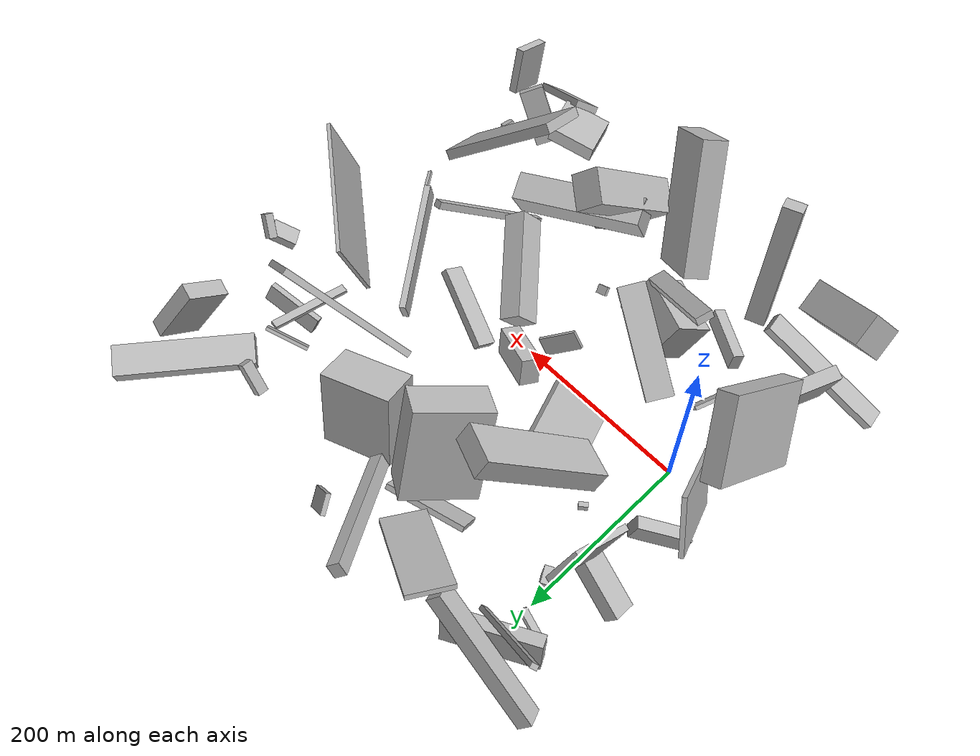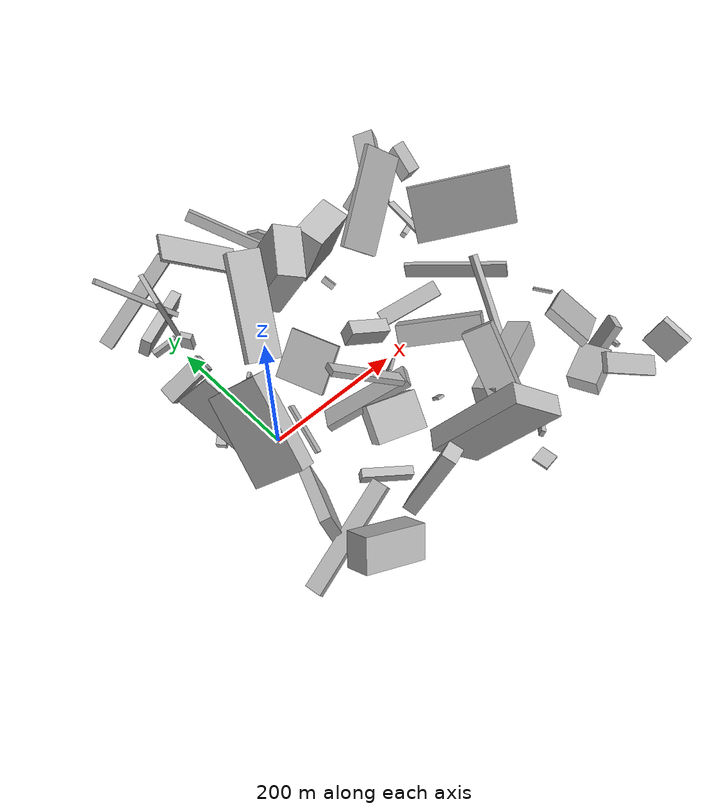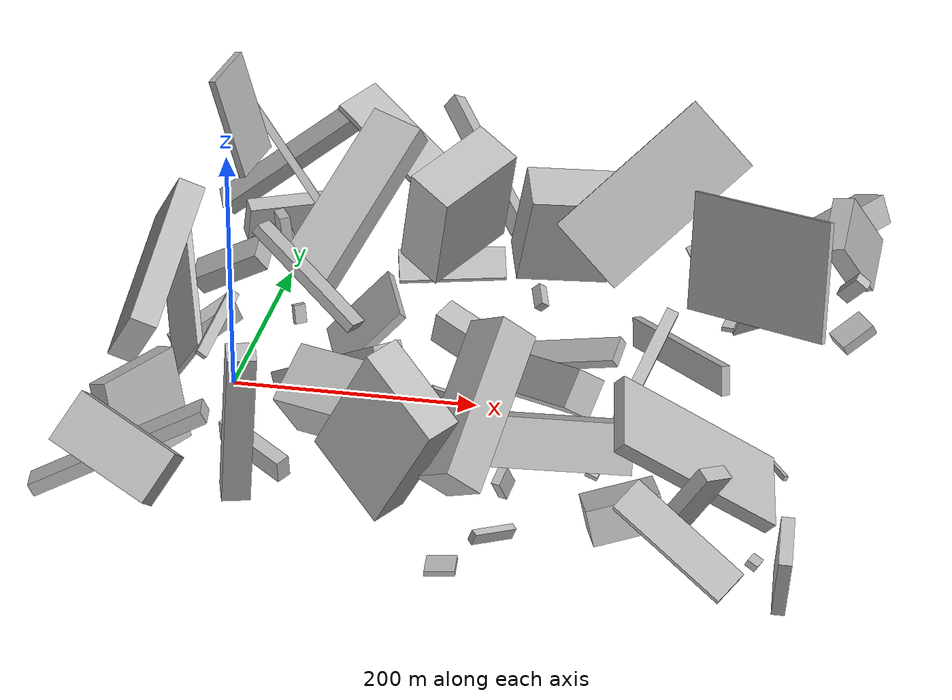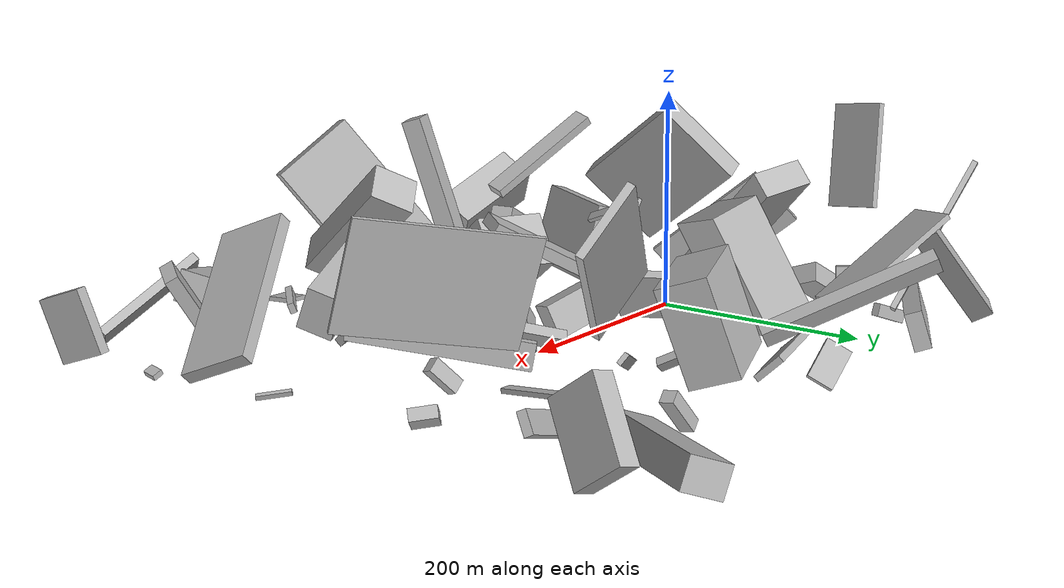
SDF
<sdf version="1.6">
 <world name="default">
  <scene>
   <sky><clouds><speed>12</speed></clouds></sky>
   <ambient>0.4 0.4 0.4 1</ambient>
   <background>0.7 0.7 0.7 1</background>
   <shadows>1</shadows>
  </scene>
  <gravity>0 0 -9.8066</gravity>
  <magnetic_field>6e-06 2.3e-05 -4.2e-05</magnetic_field>
  <physics default="0" name="default_physics" type="ode">
   <ode>
    <solver>
     <type>quick</type>
     <iters>10</iters>
     <sor>1.0</sor>
     <use_dynamic_moi_rescaling>0</use_dynamic_moi_rescaling>
    </solver>
    <constraints>
     <cfm>0</cfm>
     <erp>0.2</erp>
     <contact_max_correcting_vel>100</contact_max_correcting_vel>
     <contact_surface_layer>0.001</contact_surface_layer>
    </constraints>
   </ode>
   <max_step_size>0.004</max_step_size>
   <real_time_factor>1</real_time_factor>
   <real_time_update_rate>250</real_time_update_rate>
  </physics>
  <light name="sun" type="directional">
   <pose>0 0 10 0 0 0</pose>
   <diffuse>0.8 0.8 0.8 1</diffuse>
   <specular>0.2 0.2 0.2 1</specular>
   <attenuation>
    <range>1000</range>
    <constant>0.9</constant>
    <linear>0.01</linear>
    <quadratic>0.001</quadratic>
   </attenuation>
   <direction>-0.5 0.1 -0.9</direction>
  </light>
  <model name="building_1">
   <static>0</static>
   <pose>394.3529024393155 221.46265722009338 26.747324244176475 1.4858259801133666 0.33097299405403163 2.5004408934312408</pose>
   <link name="link">
    <gravity>0</gravity>
    <pose>0 0 73.0 0 0 0</pose>
    <collision name="collision"><geometry><box><size>33 26 146</size></box></geometry></collision>
    <visual name="visual">
     <cast_shadows>0</cast_shadows>
     <geometry><box><size>33 26 146</size></box></geometry>
     <material>
      <script>
       <uri>model://HANNAS_wall/materials/scripts</uri>
       <uri>model://HANNAS_wall/materials/textures</uri>
       <name>vrc/HANNAS_wall</name>
      </script>
     </material>
    </visual>
   </link>
  </model>
  <model name="building_2">
   <static>0</static>
   <pose>257.14010433614595 -52.05658603633513 38.38369899305509 0.32520712664259693 -0.6010422800135541 -2.5831189855911716</pose>
   <link name="link">
    <gravity>0</gravity>
    <pose>0 0 16.0 0 0 0</pose>
    <collision name="collision"><geometry><box><size>25 120 32</size></box></geometry></collision>
    <visual name="visual">
     <cast_shadows>0</cast_shadows>
     <geometry><box><size>25 120 32</size></box></geometry>
     <material>
      <script>
       <uri>model://HANNAS_wall/materials/scripts</uri>
       <uri>model://HANNAS_wall/materials/textures</uri>
       <name>vrc/HANNAS_wall</name>
      </script>
     </material>
    </visual>
   </link>
  </model>
  <model name="building_3">
   <static>0</static>
   <pose>484.0141665309752 -268.9904063514093 41.57280034854307 1.4924670550435128 0.3425520962893235 -1.481337246473761</pose>
   <link name="link">
    <gravity>0</gravity>
    <pose>0 0 5.0 0 0 0</pose>
    <collision name="collision"><geometry><box><size>45 57 10</size></box></geometry></collision>
    <visual name="visual">
     <cast_shadows>0</cast_shadows>
     <geometry><box><size>45 57 10</size></box></geometry>
     <material>
      <script>
       <uri>model://HANNAS_wall/materials/scripts</uri>
       <uri>model://HANNAS_wall/materials/textures</uri>
       <name>vrc/HANNAS_wall</name>
      </script>
     </material>
    </visual>
   </link>
  </model>
  <model name="building_4">
   <static>0</static>
   <pose>127.54012244781086 140.59037708888863 80.88568774390828 1.2894516899342432 -0.3945611780481599 2.622495961829681</pose>
   <link name="link">
    <gravity>0</gravity>
    <pose>0 0 40.0 0 0 0</pose>
    <collision name="collision"><geometry><box><size>42 105 80</size></box></geometry></collision>
    <visual name="visual">
     <cast_shadows>0</cast_shadows>
     <geometry><box><size>42 105 80</size></box></geometry>
     <material>
      <script>
       <uri>model://HANNAS_wall/materials/scripts</uri>
       <uri>model://HANNAS_wall/materials/textures</uri>
       <name>vrc/HANNAS_wall</name>
      </script>
     </material>
    </visual>
   </link>
  </model>
  <model name="building_5">
   <static>0</static>
   <pose>-36.73414239980058 133.00434304120625 27.961546612878607 1.1879769433405025 0.5112837620879958 2.9754719650996635</pose>
   <link name="link">
    <gravity>0</gravity>
    <pose>0 0 12.5 0 0 0</pose>
    <collision name="collision"><geometry><box><size>67 18 25</size></box></geometry></collision>
    <visual name="visual">
     <cast_shadows>0</cast_shadows>
     <geometry><box><size>67 18 25</size></box></geometry>
     <material>
      <script>
       <uri>model://HANNAS_wall/materials/scripts</uri>
       <uri>model://HANNAS_wall/materials/textures</uri>
       <name>vrc/HANNAS_wall</name>
      </script>
     </material>
    </visual>
   </link>
  </model>
  <model name="building_6">
   <static>0</static>
   <pose>274.6783200878808 205.2428679825985 66.87291785544838 1.2182475009416147 -1.2299053181221715 -0.9055646115412902</pose>
   <link name="link">
    <gravity>0</gravity>
    <pose>0 0 38.5 0 0 0</pose>
    <collision name="collision"><geometry><box><size>86 44 77</size></box></geometry></collision>
    <visual name="visual">
     <cast_shadows>0</cast_shadows>
     <geometry><box><size>86 44 77</size></box></geometry>
     <material>
      <script>
       <uri>model://HANNAS_wall/materials/scripts</uri>
       <uri>model://HANNAS_wall/materials/textures</uri>
       <name>vrc/HANNAS_wall</name>
      </script>
     </material>
    </visual>
   </link>
  </model>
  <model name="building_7">
   <static>0</static>
   <pose>101.60378106515535 -125.17927945677593 40.431683021523924 0.06275083375899397 -0.938359709279668 -1.9963577895482143</pose>
   <link name="link">
    <gravity>0</gravity>
    <pose>0 0 25.5 0 0 0</pose>
    <collision name="collision"><geometry><box><size>50 66 51</size></box></geometry></collision>
    <visual name="visual">
     <cast_shadows>0</cast_shadows>
     <geometry><box><size>50 66 51</size></box></geometry>
     <material>
      <script>
       <uri>model://HANNAS_wall/materials/scripts</uri>
       <uri>model://HANNAS_wall/materials/textures</uri>
       <name>vrc/HANNAS_wall</name>
      </script>
     </material>
    </visual>
   </link>
  </model>
  <model name="building_8">
   <static>0</static>
   <pose>184.22630155725162 21.507409529291614 40.47003090308368 0.993651033244855 1.1740723816533583 2.150640099928287</pose>
   <link name="link">
    <gravity>0</gravity>
    <pose>0 0 10.5 0 0 0</pose>
    <collision name="collision"><geometry><box><size>31 59 21</size></box></geometry></collision>
    <visual name="visual">
     <cast_shadows>0</cast_shadows>
     <geometry><box><size>31 59 21</size></box></geometry>
     <material>
      <script>
       <uri>model://HANNAS_wall/materials/scripts</uri>
       <uri>model://HANNAS_wall/materials/textures</uri>
       <name>vrc/HANNAS_wall</name>
      </script>
     </material>
    </visual>
   </link>
  </model>
  <model name="building_9">
   <static>0</static>
   <pose>4.68520194209303 -56.98089598726571 84.32109439826245 2.365285468497633 0.3697863700799385 -1.7504739189978904</pose>
   <link name="link">
    <gravity>0</gravity>
    <pose>0 0 2.0 0 0 0</pose>
    <collision name="collision"><geometry><box><size>68 9 4</size></box></geometry></collision>
    <visual name="visual">
     <cast_shadows>0</cast_shadows>
     <geometry><box><size>68 9 4</size></box></geometry>
     <material>
      <script>
       <uri>model://HANNAS_wall/materials/scripts</uri>
       <uri>model://HANNAS_wall/materials/textures</uri>
       <name>vrc/HANNAS_wall</name>
      </script>
     </material>
    </visual>
   </link>
  </model>
  <model name="building_10">
   <static>0</static>
   <pose>394.2297002379459 -161.1151984636984 61.964591282285255 0.6939333015984995 -0.3877202103257193 1.7420985514358118</pose>
   <link name="link">
    <gravity>0</gravity>
    <pose>0 0 6.0 0 0 0</pose>
    <collision name="collision"><geometry><box><size>65 150 12</size></box></geometry></collision>
    <visual name="visual">
     <cast_shadows>0</cast_shadows>
     <geometry><box><size>65 150 12</size></box></geometry>
     <material>
      <script>
       <uri>model://HANNAS_wall/materials/scripts</uri>
       <uri>model://HANNAS_wall/materials/textures</uri>
       <name>vrc/HANNAS_wall</name>
      </script>
     </material>
    </visual>
   </link>
  </model>
  <model name="building_11">
   <static>0</static>
   <pose>329.5202793172462 -240.53722810547876 46.83576421295969 1.36756668383419 0.198747773830721 1.8631177610127365</pose>
   <link name="link">
    <gravity>0</gravity>
    <pose>0 0 28.0 0 0 0</pose>
    <collision name="collision"><geometry><box><size>42 28 56</size></box></geometry></collision>
    <visual name="visual">
     <cast_shadows>0</cast_shadows>
     <geometry><box><size>42 28 56</size></box></geometry>
     <material>
      <script>
       <uri>model://HANNAS_wall/materials/scripts</uri>
       <uri>model://HANNAS_wall/materials/textures</uri>
       <name>vrc/HANNAS_wall</name>
      </script>
     </material>
    </visual>
   </link>
  </model>
  <model name="building_12">
   <static>0</static>
   <pose>44.23108575373503 76.05423281722835 63.26100964018402 -0.24563356642054074 -0.8661800768717383 -1.7652753054924284</pose>
   <link name="link">
    <gravity>0</gravity>
    <pose>0 0 75.0 0 0 0</pose>
    <collision name="collision"><geometry><box><size>23 46 150</size></box></geometry></collision>
    <visual name="visual">
     <cast_shadows>0</cast_shadows>
     <geometry><box><size>23 46 150</size></box></geometry>
     <material>
      <script>
       <uri>model://HANNAS_wall/materials/scripts</uri>
       <uri>model://HANNAS_wall/materials/textures</uri>
       <name>vrc/HANNAS_wall</name>
      </script>
     </material>
    </visual>
   </link>
  </model>
  <model name="building_13">
   <static>0</static>
   <pose>165.2839424343374 -229.3948656312415 90.07062157285976 1.344319361352489 -0.6443095650395149 2.607198409392995</pose>
   <link name="link">
    <gravity>0</gravity>
    <pose>0 0 14.0 0 0 0</pose>
    <collision name="collision"><geometry><box><size>77 150 28</size></box></geometry></collision>
    <visual name="visual">
     <cast_shadows>0</cast_shadows>
     <geometry><box><size>77 150 28</size></box></geometry>
     <material>
      <script>
       <uri>model://HANNAS_wall/materials/scripts</uri>
       <uri>model://HANNAS_wall/materials/textures</uri>
       <name>vrc/HANNAS_wall</name>
      </script>
     </material>
    </visual>
   </link>
  </model>
  <model name="building_14">
   <static>0</static>
   <pose>-45.329480203014604 -131.78367252644637 41.26040922991817 0.23949441207266534 -1.3096198676584543 2.51983097263272</pose>
   <link name="link">
    <gravity>0</gravity>
    <pose>0 0 7.5 0 0 0</pose>
    <collision name="collision"><geometry><box><size>74 86 15</size></box></geometry></collision>
    <visual name="visual">
     <cast_shadows>0</cast_shadows>
     <geometry><box><size>74 86 15</size></box></geometry>
     <material>
      <script>
       <uri>model://HANNAS_wall/materials/scripts</uri>
       <uri>model://HANNAS_wall/materials/textures</uri>
       <name>vrc/HANNAS_wall</name>
      </script>
     </material>
    </visual>
   </link>
  </model>
  <model name="building_15">
   <static>0</static>
   <pose>269.1639550375894 17.505147216069687 34.06177991782923 0.5605011118602818 -0.9692328662763404 -2.390158837801777</pose>
   <link name="link">
    <gravity>0</gravity>
    <pose>0 0 11.5 0 0 0</pose>
    <collision name="collision"><geometry><box><size>9 92 23</size></box></geometry></collision>
    <visual name="visual">
     <cast_shadows>0</cast_shadows>
     <geometry><box><size>9 92 23</size></box></geometry>
     <material>
      <script>
       <uri>model://HANNAS_wall/materials/scripts</uri>
       <uri>model://HANNAS_wall/materials/textures</uri>
       <name>vrc/HANNAS_wall</name>
      </script>
     </material>
    </visual>
   </link>
  </model>
  <model name="building_16">
   <static>0</static>
   <pose>315.40206983979937 80.04556117864198 37.65983715299029 1.3947267697156662 0.06727620893437118 0.6292830516431609</pose>
   <link name="link">
    <gravity>0</gravity>
    <pose>0 0 75.0 0 0 0</pose>
    <collision name="collision"><geometry><box><size>7 24 150</size></box></geometry></collision>
    <visual name="visual">
     <cast_shadows>0</cast_shadows>
     <geometry><box><size>7 24 150</size></box></geometry>
     <material>
      <script>
       <uri>model://HANNAS_wall/materials/scripts</uri>
       <uri>model://HANNAS_wall/materials/textures</uri>
       <name>vrc/HANNAS_wall</name>
      </script>
     </material>
    </visual>
   </link>
  </model>
  <model name="building_17">
   <static>0</static>
   <pose>413.58546270654364 61.5947329597185 114.29006758379805 2.4947247818862714 -1.2869866054068244 1.5546076367995525</pose>
   <link name="link">
    <gravity>0</gravity>
    <pose>0 0 2.0 0 0 0</pose>
    <collision name="collision"><geometry><box><size>96 150 4</size></box></geometry></collision>
    <visual name="visual">
     <cast_shadows>0</cast_shadows>
     <geometry><box><size>96 150 4</size></box></geometry>
     <material>
      <script>
       <uri>model://HANNAS_wall/materials/scripts</uri>
       <uri>model://HANNAS_wall/materials/textures</uri>
       <name>vrc/HANNAS_wall</name>
      </script>
     </material>
    </visual>
   </link>
  </model>
  <model name="building_18">
   <static>0</static>
   <pose>109.46658371300938 -53.244030253626136 60.46062056002279 -1.3781704480058 0.501472572155616 2.6502230469970245</pose>
   <link name="link">
    <gravity>0</gravity>
    <pose>0 0 15.0 0 0 0</pose>
    <collision name="collision"><geometry><box><size>122 11 30</size></box></geometry></collision>
    <visual name="visual">
     <cast_shadows>0</cast_shadows>
     <geometry><box><size>122 11 30</size></box></geometry>
     <material>
      <script>
       <uri>model://HANNAS_wall/materials/scripts</uri>
       <uri>model://HANNAS_wall/materials/textures</uri>
       <name>vrc/HANNAS_wall</name>
      </script>
     </material>
    </visual>
   </link>
  </model>
  <model name="building_19">
   <static>0</static>
   <pose>451.9897957605599 -208.13883936013028 7.977219321664556 -2.6426260932623244 0.0995628920749444 1.3722072560347787</pose>
   <link name="link">
    <gravity>0</gravity>
    <pose>0 0 2.5 0 0 0</pose>
    <collision name="collision"><geometry><box><size>14 9 5</size></box></geometry></collision>
    <visual name="visual">
     <cast_shadows>0</cast_shadows>
     <geometry><box><size>14 9 5</size></box></geometry>
     <material>
      <script>
       <uri>model://HANNAS_wall/materials/scripts</uri>
       <uri>model://HANNAS_wall/materials/textures</uri>
       <name>vrc/HANNAS_wall</name>
      </script>
     </material>
    </visual>
   </link>
  </model>
  <model name="building_20">
   <static>0</static>
   <pose>-5.746715361581565 259.9499718058672 32.379352720894005 3.045369504124542 -1.2647704294818807 -0.9788164347445428</pose>
   <link name="link">
    <gravity>0</gravity>
    <pose>0 0 7.5 0 0 0</pose>
    <collision name="collision"><geometry><box><size>34 98 15</size></box></geometry></collision>
    <visual name="visual">
     <cast_shadows>0</cast_shadows>
     <geometry><box><size>34 98 15</size></box></geometry>
     <material>
      <script>
       <uri>model://HANNAS_wall/materials/scripts</uri>
       <uri>model://HANNAS_wall/materials/textures</uri>
       <name>vrc/HANNAS_wall</name>
      </script>
     </material>
    </visual>
   </link>
  </model>
  <model name="building_21">
   <static>0</static>
   <pose>462.43538734891047 246.89706441934177 47.6034739311881 1.2096228259915978 0.8981732801566203 1.04987870245346</pose>
   <link name="link">
    <gravity>0</gravity>
    <pose>0 0 9.5 0 0 0</pose>
    <collision name="collision"><geometry><box><size>71 49 19</size></box></geometry></collision>
    <visual name="visual">
     <cast_shadows>0</cast_shadows>
     <geometry><box><size>71 49 19</size></box></geometry>
     <material>
      <script>
       <uri>model://HANNAS_wall/materials/scripts</uri>
       <uri>model://HANNAS_wall/materials/textures</uri>
       <name>vrc/HANNAS_wall</name>
      </script>
     </material>
    </visual>
   </link>
  </model>
  <model name="building_22">
   <static>0</static>
   <pose>406.77457713779603 -217.50756526978032 52.61135907047508 1.0474040615593745 -0.27466451194118396 -2.175551691770271</pose>
   <link name="link">
    <gravity>0</gravity>
    <pose>0 0 6.0 0 0 0</pose>
    <collision name="collision"><geometry><box><size>28 67 12</size></box></geometry></collision>
    <visual name="visual">
     <cast_shadows>0</cast_shadows>
     <geometry><box><size>28 67 12</size></box></geometry>
     <material>
      <script>
       <uri>model://HANNAS_wall/materials/scripts</uri>
       <uri>model://HANNAS_wall/materials/textures</uri>
       <name>vrc/HANNAS_wall</name>
      </script>
     </material>
    </visual>
   </link>
  </model>
  <model name="building_23">
   <static>0</static>
   <pose>165.66619395298667 -36.03282745121005 24.682456995200788 -2.1370731963397605 0.3350639865009555 -1.100390984221887</pose>
   <link name="link">
    <gravity>0</gravity>
    <pose>0 0 21.5 0 0 0</pose>
    <collision name="collision"><geometry><box><size>4 22 43</size></box></geometry></collision>
    <visual name="visual">
     <cast_shadows>0</cast_shadows>
     <geometry><box><size>4 22 43</size></box></geometry>
     <material>
      <script>
       <uri>model://HANNAS_wall/materials/scripts</uri>
       <uri>model://HANNAS_wall/materials/textures</uri>
       <name>vrc/HANNAS_wall</name>
      </script>
     </material>
    </visual>
   </link>
  </model>
  <model name="building_24">
   <static>0</static>
   <pose>341.5279233102674 -122.95708578648458 44.82167211622977 -1.0949022133881214 -1.1690650119154966 1.517561592812299</pose>
   <link name="link">
    <gravity>0</gravity>
    <pose>0 0 75.0 0 0 0</pose>
    <collision name="collision"><geometry><box><size>39 32 150</size></box></geometry></collision>
    <visual name="visual">
     <cast_shadows>0</cast_shadows>
     <geometry><box><size>39 32 150</size></box></geometry>
     <material>
      <script>
       <uri>model://HANNAS_wall/materials/scripts</uri>
       <uri>model://HANNAS_wall/materials/textures</uri>
       <name>vrc/HANNAS_wall</name>
      </script>
     </material>
    </visual>
   </link>
  </model>
  <model name="building_25">
   <static>0</static>
   <pose>226.95191835559825 140.02411120390886 20.201285667366403 -0.9158745239279404 -0.748783935244642 -0.1607416937238724</pose>
   <link name="link">
    <gravity>0</gravity>
    <pose>0 0 10.0 0 0 0</pose>
    <collision name="collision"><geometry><box><size>9 8 20</size></box></geometry></collision>
    <visual name="visual">
     <cast_shadows>0</cast_shadows>
     <geometry><box><size>9 8 20</size></box></geometry>
     <material>
      <script>
       <uri>model://HANNAS_wall/materials/scripts</uri>
       <uri>model://HANNAS_wall/materials/textures</uri>
       <name>vrc/HANNAS_wall</name>
      </script>
     </material>
    </visual>
   </link>
  </model>
  <model name="building_26">
   <static>0</static>
   <pose>82.32461059975694 -167.67718640769283 22.390831844860102 1.4048462409935223 0.20264270165730375 -2.199320151258093</pose>
   <link name="link">
    <gravity>0</gravity>
    <pose>0 0 33.5 0 0 0</pose>
    <collision name="collision"><geometry><box><size>12 19 67</size></box></geometry></collision>
    <visual name="visual">
     <cast_shadows>0</cast_shadows>
     <geometry><box><size>12 19 67</size></box></geometry>
     <material>
      <script>
       <uri>model://HANNAS_wall/materials/scripts</uri>
       <uri>model://HANNAS_wall/materials/textures</uri>
       <name>vrc/HANNAS_wall</name>
      </script>
     </material>
    </visual>
   </link>
  </model>
  <model name="building_27">
   <static>0</static>
   <pose>-38.82191161224696 -246.82672628518594 50.098596345101846 -0.5244352444187853 -0.5824422024915559 -1.5093985954336984</pose>
   <link name="link">
    <gravity>0</gravity>
    <pose>0 0 22.0 0 0 0</pose>
    <collision name="collision"><geometry><box><size>37 86 44</size></box></geometry></collision>
    <visual name="visual">
     <cast_shadows>0</cast_shadows>
     <geometry><box><size>37 86 44</size></box></geometry>
     <material>
      <script>
       <uri>model://HANNAS_wall/materials/scripts</uri>
       <uri>model://HANNAS_wall/materials/textures</uri>
       <name>vrc/HANNAS_wall</name>
      </script>
     </material>
    </visual>
   </link>
  </model>
  <model name="building_28">
   <static>0</static>
   <pose>195.36149046123307 216.78240916006428 50.317596140404866 -1.0862247576883828 0.46841856635259743 0.8569257916858313</pose>
   <link name="link">
    <gravity>0</gravity>
    <pose>0 0 75.0 0 0 0</pose>
    <collision name="collision"><geometry><box><size>13 15 150</size></box></geometry></collision>
    <visual name="visual">
     <cast_shadows>0</cast_shadows>
     <geometry><box><size>13 15 150</size></box></geometry>
     <material>
      <script>
       <uri>model://HANNAS_wall/materials/scripts</uri>
       <uri>model://HANNAS_wall/materials/textures</uri>
       <name>vrc/HANNAS_wall</name>
      </script>
     </material>
    </visual>
   </link>
  </model>
  <model name="building_29">
   <static>0</static>
   <pose>390.79928386883046 149.20933221524638 36.39896331364514 0.03355131527006278 -0.11819591561860332 1.4635880523477998</pose>
   <link name="link">
    <gravity>0</gravity>
    <pose>0 0 2.0 0 0 0</pose>
    <collision name="collision"><geometry><box><size>89 10 4</size></box></geometry></collision>
    <visual name="visual">
     <cast_shadows>0</cast_shadows>
     <geometry><box><size>89 10 4</size></box></geometry>
     <material>
      <script>
       <uri>model://HANNAS_wall/materials/scripts</uri>
       <uri>model://HANNAS_wall/materials/textures</uri>
       <name>vrc/HANNAS_wall</name>
      </script>
     </material>
    </visual>
   </link>
  </model>
  <model name="building_30">
   <static>0</static>
   <pose>259.5561097327289 -235.28324607637072 21.67856103105769 0.48958918192868767 1.1816887785736843 2.8230440786656925</pose>
   <link name="link">
    <gravity>0</gravity>
    <pose>0 0 3.0 0 0 0</pose>
    <collision name="collision"><geometry><box><size>10 37 6</size></box></geometry></collision>
    <visual name="visual">
     <cast_shadows>0</cast_shadows>
     <geometry><box><size>10 37 6</size></box></geometry>
     <material>
      <script>
       <uri>model://HANNAS_wall/materials/scripts</uri>
       <uri>model://HANNAS_wall/materials/textures</uri>
       <name>vrc/HANNAS_wall</name>
      </script>
     </material>
    </visual>
   </link>
  </model>
  <model name="building_31">
   <static>0</static>
   <pose>408.9432879297726 -253.66467668488846 57.00288098972977 -2.210250650319343 -0.5488657222371173 2.8013571493617135</pose>
   <link name="link">
    <gravity>0</gravity>
    <pose>0 0 14.0 0 0 0</pose>
    <collision name="collision"><geometry><box><size>103 8 28</size></box></geometry></collision>
    <visual name="visual">
     <cast_shadows>0</cast_shadows>
     <geometry><box><size>103 8 28</size></box></geometry>
     <material>
      <script>
       <uri>model://HANNAS_wall/materials/scripts</uri>
       <uri>model://HANNAS_wall/materials/textures</uri>
       <name>vrc/HANNAS_wall</name>
      </script>
     </material>
    </visual>
   </link>
  </model>
  <model name="building_32">
   <static>0</static>
   <pose>368.5015525613111 246.74820069494547 33.47303723668682 -0.8640359063891316 -0.14406796387177787 1.613409638007962</pose>
   <link name="link">
    <gravity>0</gravity>
    <pose>0 0 5.5 0 0 0</pose>
    <collision name="collision"><geometry><box><size>12 37 11</size></box></geometry></collision>
    <visual name="visual">
     <cast_shadows>0</cast_shadows>
     <geometry><box><size>12 37 11</size></box></geometry>
     <material>
      <script>
       <uri>model://HANNAS_wall/materials/scripts</uri>
       <uri>model://HANNAS_wall/materials/textures</uri>
       <name>vrc/HANNAS_wall</name>
      </script>
     </material>
    </visual>
   </link>
  </model>
  <model name="building_33">
   <static>0</static>
   <pose>-47.75074383338442 33.61355474932136 62.2211232939952 -1.285049799475063 -0.6858646960291871 1.9231638652864478</pose>
   <link name="link">
    <gravity>0</gravity>
    <pose>0 0 2.5 0 0 0</pose>
    <collision name="collision"><geometry><box><size>123 60 5</size></box></geometry></collision>
    <visual name="visual">
     <cast_shadows>0</cast_shadows>
     <geometry><box><size>123 60 5</size></box></geometry>
     <material>
      <script>
       <uri>model://HANNAS_wall/materials/scripts</uri>
       <uri>model://HANNAS_wall/materials/textures</uri>
       <name>vrc/HANNAS_wall</name>
      </script>
     </material>
    </visual>
   </link>
  </model>
  <model name="building_34">
   <static>0</static>
   <pose>-36.838952815287975 222.66982662513908 16.09312554134617 -1.219425244574688 0.03136342401759944 -1.7728731369838946</pose>
   <link name="link">
    <gravity>0</gravity>
    <pose>0 0 18.5 0 0 0</pose>
    <collision name="collision"><geometry><box><size>7 11 37</size></box></geometry></collision>
    <visual name="visual">
     <cast_shadows>0</cast_shadows>
     <geometry><box><size>7 11 37</size></box></geometry>
     <material>
      <script>
       <uri>model://HANNAS_wall/materials/scripts</uri>
       <uri>model://HANNAS_wall/materials/textures</uri>
       <name>vrc/HANNAS_wall</name>
      </script>
     </material>
    </visual>
   </link>
  </model>
  <model name="building_35">
   <static>0</static>
   <pose>255.65367864975528 -164.10133605368034 21.926151342750302 0.6066654012859359 0.02262479737553512 -0.29694263772164947</pose>
   <link name="link">
    <gravity>0</gravity>
    <pose>0 0 11.5 0 0 0</pose>
    <collision name="collision"><geometry><box><size>7 16 23</size></box></geometry></collision>
    <visual name="visual">
     <cast_shadows>0</cast_shadows>
     <geometry><box><size>7 16 23</size></box></geometry>
     <material>
      <script>
       <uri>model://HANNAS_wall/materials/scripts</uri>
       <uri>model://HANNAS_wall/materials/textures</uri>
       <name>vrc/HANNAS_wall</name>
      </script>
     </material>
    </visual>
   </link>
  </model>
  <model name="building_36">
   <static>0</static>
   <pose>129.8861875495918 242.36431707779116 67.92279682656584 0.20313436770149312 -0.9982461752930311 -0.6788270086504347</pose>
   <link name="link">
    <gravity>0</gravity>
    <pose>0 0 59.0 0 0 0</pose>
    <collision name="collision"><geometry><box><size>5 46 118</size></box></geometry></collision>
    <visual name="visual">
     <cast_shadows>0</cast_shadows>
     <geometry><box><size>5 46 118</size></box></geometry>
     <material>
      <script>
       <uri>model://HANNAS_wall/materials/scripts</uri>
       <uri>model://HANNAS_wall/materials/textures</uri>
       <name>vrc/HANNAS_wall</name>
      </script>
     </material>
    </visual>
   </link>
  </model>
  <model name="building_37">
   <static>0</static>
   <pose>82.19627382884858 -83.40420176292994 142.74805804540298 0.2331959332957301 -0.5773040769811185 2.7107318636980997</pose>
   <link name="link">
    <gravity>0</gravity>
    <pose>0 0 4.0 0 0 0</pose>
    <collision name="collision"><geometry><box><size>109 18 8</size></box></geometry></collision>
    <visual name="visual">
     <cast_shadows>0</cast_shadows>
     <geometry><box><size>109 18 8</size></box></geometry>
     <material>
      <script>
       <uri>model://HANNAS_wall/materials/scripts</uri>
       <uri>model://HANNAS_wall/materials/textures</uri>
       <name>vrc/HANNAS_wall</name>
      </script>
     </material>
    </visual>
   </link>
  </model>
  <model name="building_38">
   <static>0</static>
   <pose>244.05679507443676 -164.39206132081935 83.73932216596765 0.7691338001489387 -0.4470945813477857 -0.6271173027469362</pose>
   <link name="link">
    <gravity>0</gravity>
    <pose>0 0 17.0 0 0 0</pose>
    <collision name="collision"><geometry><box><size>40 131 34</size></box></geometry></collision>
    <visual name="visual">
     <cast_shadows>0</cast_shadows>
     <geometry><box><size>40 131 34</size></box></geometry>
     <material>
      <script>
       <uri>model://HANNAS_wall/materials/scripts</uri>
       <uri>model://HANNAS_wall/materials/textures</uri>
       <name>vrc/HANNAS_wall</name>
      </script>
     </material>
    </visual>
   </link>
  </model>
  <model name="building_39">
   <static>0</static>
   <pose>194.98506825720884 284.9785572494928 53.68956433246329 -2.5318581237868183 0.500828591207895 -2.3184726957584063</pose>
   <link name="link">
    <gravity>0</gravity>
    <pose>0 0 17.5 0 0 0</pose>
    <collision name="collision"><geometry><box><size>5 22 35</size></box></geometry></collision>
    <visual name="visual">
     <cast_shadows>0</cast_shadows>
     <geometry><box><size>5 22 35</size></box></geometry>
     <material>
      <script>
       <uri>model://HANNAS_wall/materials/scripts</uri>
       <uri>model://HANNAS_wall/materials/textures</uri>
       <name>vrc/HANNAS_wall</name>
      </script>
     </material>
    </visual>
   </link>
  </model>
  <model name="building_40">
   <static>0</static>
   <pose>265.0784613197671 127.063503780737 77.34306412820757 0.8303333665091629 0.3906056587705866 1.7338662175904822</pose>
   <link name="link">
    <gravity>0</gravity>
    <pose>0 0 75.0 0 0 0</pose>
    <collision name="collision"><geometry><box><size>7 70 150</size></box></geometry></collision>
    <visual name="visual">
     <cast_shadows>0</cast_shadows>
     <geometry><box><size>7 70 150</size></box></geometry>
     <material>
      <script>
       <uri>model://HANNAS_wall/materials/scripts</uri>
       <uri>model://HANNAS_wall/materials/textures</uri>
       <name>vrc/HANNAS_wall</name>
      </script>
     </material>
    </visual>
   </link>
  </model>
  <model name="building_41">
   <static>0</static>
   <pose>340.0084676479957 -68.08661185525105 59.34614140664631 1.0562724041154008 -0.8156964251530837 -1.2833043570962641</pose>
   <link name="link">
    <gravity>0</gravity>
    <pose>0 0 5.0 0 0 0</pose>
    <collision name="collision"><geometry><box><size>8 150 10</size></box></geometry></collision>
    <visual name="visual">
     <cast_shadows>0</cast_shadows>
     <geometry><box><size>8 150 10</size></box></geometry>
     <material>
      <script>
       <uri>model://HANNAS_wall/materials/scripts</uri>
       <uri>model://HANNAS_wall/materials/textures</uri>
       <name>vrc/HANNAS_wall</name>
      </script>
     </material>
    </visual>
   </link>
  </model>
  <model name="building_42">
   <static>0</static>
   <pose>225.72676619500174 -268.18986050671583 14.357999673741128 -3.114783772739726 -0.057572923201449445 0.10281570092803079</pose>
   <link name="link">
    <gravity>0</gravity>
    <pose>0 0 2.0 0 0 0</pose>
    <collision name="collision"><geometry><box><size>23 23 4</size></box></geometry></collision>
    <visual name="visual">
     <cast_shadows>0</cast_shadows>
     <geometry><box><size>23 23 4</size></box></geometry>
     <material>
      <script>
       <uri>model://HANNAS_wall/materials/scripts</uri>
       <uri>model://HANNAS_wall/materials/textures</uri>
       <name>vrc/HANNAS_wall</name>
      </script>
     </material>
    </visual>
   </link>
  </model>
  <model name="building_43">
   <static>0</static>
   <pose>95.18251136092111 191.70042876918828 19.32498852463803 1.572999776946003 0.8171312382116583 1.8393448133658679</pose>
   <link name="link">
    <gravity>0</gravity>
    <pose>0 0 45.0 0 0 0</pose>
    <collision name="collision"><geometry><box><size>6 28 90</size></box></geometry></collision>
    <visual name="visual">
     <cast_shadows>0</cast_shadows>
     <geometry><box><size>6 28 90</size></box></geometry>
     <material>
      <script>
       <uri>model://HANNAS_wall/materials/scripts</uri>
       <uri>model://HANNAS_wall/materials/textures</uri>
       <name>vrc/HANNAS_wall</name>
      </script>
     </material>
    </visual>
   </link>
  </model>
  <model name="building_44">
   <static>0</static>
   <pose>-18.676162006785425 80.30059246812999 26.99668353048883 -2.921880240901296 1.15685808464428 0.9517163815517456</pose>
   <link name="link">
    <gravity>0</gravity>
    <pose>0 0 30.0 0 0 0</pose>
    <collision name="collision"><geometry><box><size>21 14 60</size></box></geometry></collision>
    <visual name="visual">
     <cast_shadows>0</cast_shadows>
     <geometry><box><size>21 14 60</size></box></geometry>
     <material>
      <script>
       <uri>model://HANNAS_wall/materials/scripts</uri>
       <uri>model://HANNAS_wall/materials/textures</uri>
       <name>vrc/HANNAS_wall</name>
      </script>
     </material>
    </visual>
   </link>
  </model>
  <model name="building_45">
   <static>0</static>
   <pose>-59.504622079777 -40.611298361819124 119.70825672884149 2.0840270569412915 -0.6390276678632638 1.416981677458029</pose>
   <link name="link">
    <gravity>0</gravity>
    <pose>0 0 11.0 0 0 0</pose>
    <collision name="collision"><geometry><box><size>125 88 22</size></box></geometry></collision>
    <visual name="visual">
     <cast_shadows>0</cast_shadows>
     <geometry><box><size>125 88 22</size></box></geometry>
     <material>
      <script>
       <uri>model://HANNAS_wall/materials/scripts</uri>
       <uri>model://HANNAS_wall/materials/textures</uri>
       <name>vrc/HANNAS_wall</name>
      </script>
     </material>
    </visual>
   </link>
  </model>
  <model name="building_46">
   <static>0</static>
   <pose>-24.97644772109636 259.23861487155483 95.878706564781 1.1076805080202494 -0.5219453240129787 0.4845814467607694</pose>
   <link name="link">
    <gravity>0</gravity>
    <pose>0 0 2.5 0 0 0</pose>
    <collision name="collision"><geometry><box><size>7 150 5</size></box></geometry></collision>
    <visual name="visual">
     <cast_shadows>0</cast_shadows>
     <geometry><box><size>7 150 5</size></box></geometry>
     <material>
      <script>
       <uri>model://HANNAS_wall/materials/scripts</uri>
       <uri>model://HANNAS_wall/materials/textures</uri>
       <name>vrc/HANNAS_wall</name>
      </script>
     </material>
    </visual>
   </link>
  </model>
  <model name="building_47">
   <static>0</static>
   <pose>110.80383156436773 16.650680350575513 36.753794537622866 -1.5309477311898483 0.7990348228670057 0.37781260869530536</pose>
   <link name="link">
    <gravity>0</gravity>
    <pose>0 0 36.0 0 0 0</pose>
    <collision name="collision"><geometry><box><size>7 71 72</size></box></geometry></collision>
    <visual name="visual">
     <cast_shadows>0</cast_shadows>
     <geometry><box><size>7 71 72</size></box></geometry>
     <material>
      <script>
       <uri>model://HANNAS_wall/materials/scripts</uri>
       <uri>model://HANNAS_wall/materials/textures</uri>
       <name>vrc/HANNAS_wall</name>
      </script>
     </material>
    </visual>
   </link>
  </model>
  <model name="building_48">
   <static>0</static>
   <pose>476.34995873548047 100.99262210657375 31.026289591597568 1.064855853978438 -0.13593091468552515 2.258477343386929</pose>
   <link name="link">
    <gravity>0</gravity>
    <pose>0 0 15.0 0 0 0</pose>
    <collision name="collision"><geometry><box><size>22 10 30</size></box></geometry></collision>
    <visual name="visual">
     <cast_shadows>0</cast_shadows>
     <geometry><box><size>22 10 30</size></box></geometry>
     <material>
      <script>
       <uri>model://HANNAS_wall/materials/scripts</uri>
       <uri>model://HANNAS_wall/materials/textures</uri>
       <name>vrc/HANNAS_wall</name>
      </script>
     </material>
    </visual>
   </link>
  </model>
  <model name="building_49">
   <static>0</static>
   <pose>1.4730126306142277 187.76793810955905 50.520114929463645 3.0695239764176074 -1.4646782240857983 -2.5442599011686853</pose>
   <link name="link">
    <gravity>0</gravity>
    <pose>0 0 4.5 0 0 0</pose>
    <collision name="collision"><geometry><box><size>26 18 9</size></box></geometry></collision>
    <visual name="visual">
     <cast_shadows>0</cast_shadows>
     <geometry><box><size>26 18 9</size></box></geometry>
     <material>
      <script>
       <uri>model://HANNAS_wall/materials/scripts</uri>
       <uri>model://HANNAS_wall/materials/textures</uri>
       <name>vrc/HANNAS_wall</name>
      </script>
     </material>
    </visual>
   </link>
  </model>
  <model name="building_50">
   <static>0</static>
   <pose>-23.337757253756905 178.16113891901318 111.76470895480534 -0.21379975867214152 -0.1334770669428052 1.3597510639088948</pose>
   <link name="link">
    <gravity>0</gravity>
    <pose>0 0 45.5 0 0 0</pose>
    <collision name="collision"><geometry><box><size>50 6 91</size></box></geometry></collision>
    <visual name="visual">
     <cast_shadows>0</cast_shadows>
     <geometry><box><size>50 6 91</size></box></geometry>
     <material>
      <script>
       <uri>model://HANNAS_wall/materials/scripts</uri>
       <uri>model://HANNAS_wall/materials/textures</uri>
       <name>vrc/HANNAS_wall</name>
      </script>
     </material>
    </visual>
   </link>
  </model>
  <model name="building_51">
   <static>0</static>
   <pose>59.00073354781519 -211.82026278539126 91.9570693690539 3.0293150649088267 -1.2619670254970143 -1.1364908137123588</pose>
   <link name="link">
    <gravity>0</gravity>
    <pose>0 0 9.5 0 0 0</pose>
    <collision name="collision"><geometry><box><size>150 22 19</size></box></geometry></collision>
    <visual name="visual">
     <cast_shadows>0</cast_shadows>
     <geometry><box><size>150 22 19</size></box></geometry>
     <material>
      <script>
       <uri>model://HANNAS_wall/materials/scripts</uri>
       <uri>model://HANNAS_wall/materials/textures</uri>
       <name>vrc/HANNAS_wall</name>
      </script>
     </material>
    </visual>
   </link>
  </model>
  <model name="building_52">
   <static>0</static>
   <pose>-14.367713603591524 270.3854008105541 64.74223680156675 0.953023344483009 -0.6891637132121735 -2.32440879741638</pose>
   <link name="link">
    <gravity>0</gravity>
    <pose>0 0 10.0 0 0 0</pose>
    <collision name="collision"><geometry><box><size>16 150 20</size></box></geometry></collision>
    <visual name="visual">
     <cast_shadows>0</cast_shadows>
     <geometry><box><size>16 150 20</size></box></geometry>
     <material>
      <script>
       <uri>model://HANNAS_wall/materials/scripts</uri>
       <uri>model://HANNAS_wall/materials/textures</uri>
       <name>vrc/HANNAS_wall</name>
      </script>
     </material>
    </visual>
   </link>
  </model>
  <model name="building_53">
   <static>0</static>
   <pose>23.36976840501464 -173.49136498008582 69.93972656414269 -3.135820330851459 -1.115600436862143 -2.9844670868840217</pose>
   <link name="link">
    <gravity>0</gravity>
    <pose>0 0 75.0 0 0 0</pose>
    <collision name="collision"><geometry><box><size>11 22 150</size></box></geometry></collision>
    <visual name="visual">
     <cast_shadows>0</cast_shadows>
     <geometry><box><size>11 22 150</size></box></geometry>
     <material>
      <script>
       <uri>model://HANNAS_wall/materials/scripts</uri>
       <uri>model://HANNAS_wall/materials/textures</uri>
       <name>vrc/HANNAS_wall</name>
      </script>
     </material>
    </visual>
   </link>
  </model>
  <model name="building_54">
   <static>0</static>
   <pose>32.743390523336885 95.10626816631382 9.335667167290623 0.18605287982396096 -0.0022597620830202155 -2.461006009848241</pose>
   <link name="link">
    <gravity>0</gravity>
    <pose>0 0 8.0 0 0 0</pose>
    <collision name="collision"><geometry><box><size>10 5 16</size></box></geometry></collision>
    <visual name="visual">
     <cast_shadows>0</cast_shadows>
     <geometry><box><size>10 5 16</size></box></geometry>
     <material>
      <script>
       <uri>model://HANNAS_wall/materials/scripts</uri>
       <uri>model://HANNAS_wall/materials/textures</uri>
       <name>vrc/HANNAS_wall</name>
      </script>
     </material>
    </visual>
   </link>
  </model>
  <model name="building_55">
   <static>0</static>
   <pose>410.44629566230253 161.30735406153175 24.433217016008978 2.021899528386087 -0.30157702469379827 0.21582688065689</pose>
   <link name="link">
    <gravity>0</gravity>
    <pose>0 0 4.0 0 0 0</pose>
    <collision name="collision"><geometry><box><size>64 20 8</size></box></geometry></collision>
    <visual name="visual">
     <cast_shadows>0</cast_shadows>
     <geometry><box><size>64 20 8</size></box></geometry>
     <material>
      <script>
       <uri>model://HANNAS_wall/materials/scripts</uri>
       <uri>model://HANNAS_wall/materials/textures</uri>
       <name>vrc/HANNAS_wall</name>
      </script>
     </material>
    </visual>
   </link>
  </model>
  <model name="building_56">
   <static>0</static>
   <pose>360.9905388855258 196.29564053736266 66.35518502087702 -2.205442721102016 -0.3581040928054198 0.45666964643221203</pose>
   <link name="link">
    <gravity>0</gravity>
    <pose>0 0 2.0 0 0 0</pose>
    <collision name="collision"><geometry><box><size>47 10 4</size></box></geometry></collision>
    <visual name="visual">
     <cast_shadows>0</cast_shadows>
     <geometry><box><size>47 10 4</size></box></geometry>
     <material>
      <script>
       <uri>model://HANNAS_wall/materials/scripts</uri>
       <uri>model://HANNAS_wall/materials/textures</uri>
       <name>vrc/HANNAS_wall</name>
      </script>
     </material>
    </visual>
   </link>
  </model>
  <model name="building_57">
   <static>0</static>
   <pose>451.0206861213521 -73.150452306223 10.831310400597827 -1.2098177580054272 -0.13733249906900036 2.23473396297605</pose>
   <link name="link">
    <gravity>0</gravity>
    <pose>0 0 2.0 0 0 0</pose>
    <collision name="collision"><geometry><box><size>29 4 4</size></box></geometry></collision>
    <visual name="visual">
     <cast_shadows>0</cast_shadows>
     <geometry><box><size>29 4 4</size></box></geometry>
     <material>
      <script>
       <uri>model://HANNAS_wall/materials/scripts</uri>
       <uri>model://HANNAS_wall/materials/textures</uri>
       <name>vrc/HANNAS_wall</name>
      </script>
     </material>
    </visual>
   </link>
  </model>
  <model name="building_58">
   <static>0</static>
   <pose>192.91757198375575 -102.15525255583994 13.979126146204745 0.8726443496658861 0.3822318478927281 0.049522860572823534</pose>
   <link name="link">
    <gravity>0</gravity>
    <pose>0 0 5.0 0 0 0</pose>
    <collision name="collision"><geometry><box><size>13 4 10</size></box></geometry></collision>
    <visual name="visual">
     <cast_shadows>0</cast_shadows>
     <geometry><box><size>13 4 10</size></box></geometry>
     <material>
      <script>
       <uri>model://HANNAS_wall/materials/scripts</uri>
       <uri>model://HANNAS_wall/materials/textures</uri>
       <name>vrc/HANNAS_wall</name>
      </script>
     </material>
    </visual>
   </link>
  </model>
  <model name="building_59">
   <static>0</static>
   <pose>483.5485629509582 120.05526526002019 69.72813808165327 1.176316646851084 -0.698302476486773 -3.121917135337483</pose>
   <link name="link">
    <gravity>0</gravity>
    <pose>0 0 4.5 0 0 0</pose>
    <collision name="collision"><geometry><box><size>12 27 9</size></box></geometry></collision>
    <visual name="visual">
     <cast_shadows>0</cast_shadows>
     <geometry><box><size>12 27 9</size></box></geometry>
     <material>
      <script>
       <uri>model://HANNAS_wall/materials/scripts</uri>
       <uri>model://HANNAS_wall/materials/textures</uri>
       <name>vrc/HANNAS_wall</name>
      </script>
     </material>
    </visual>
   </link>
  </model>
 </world>
</sdf>
